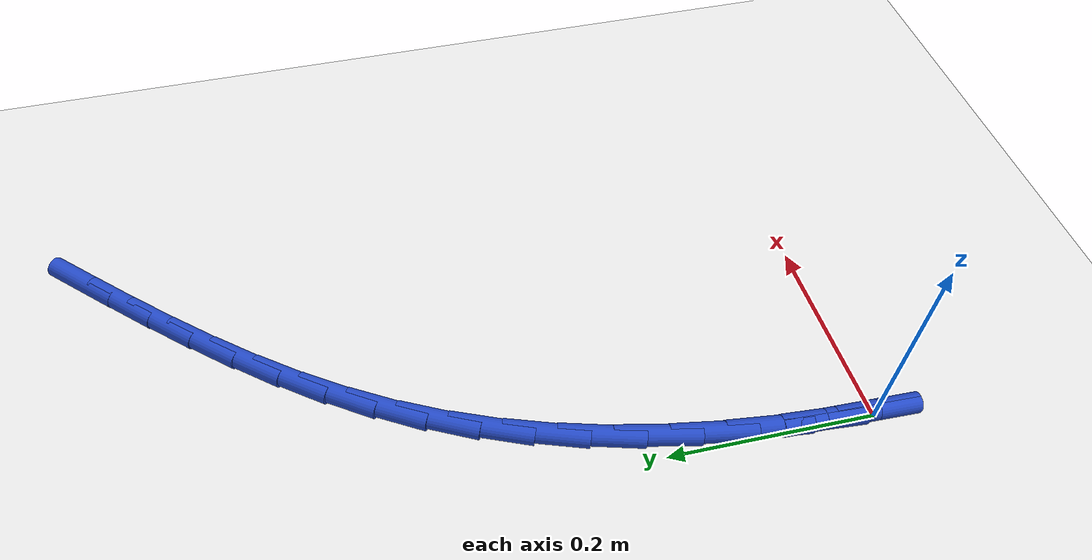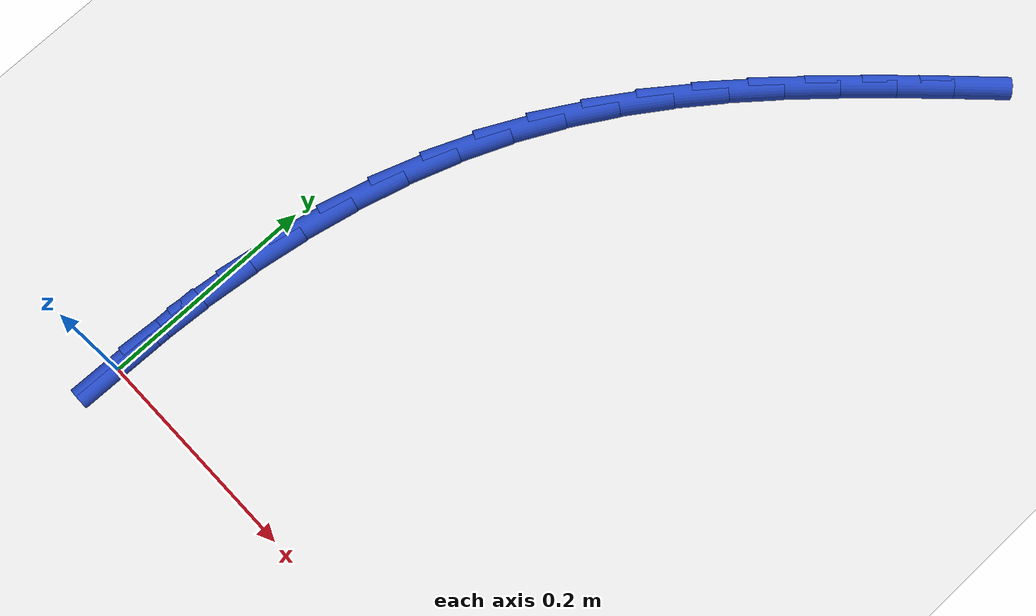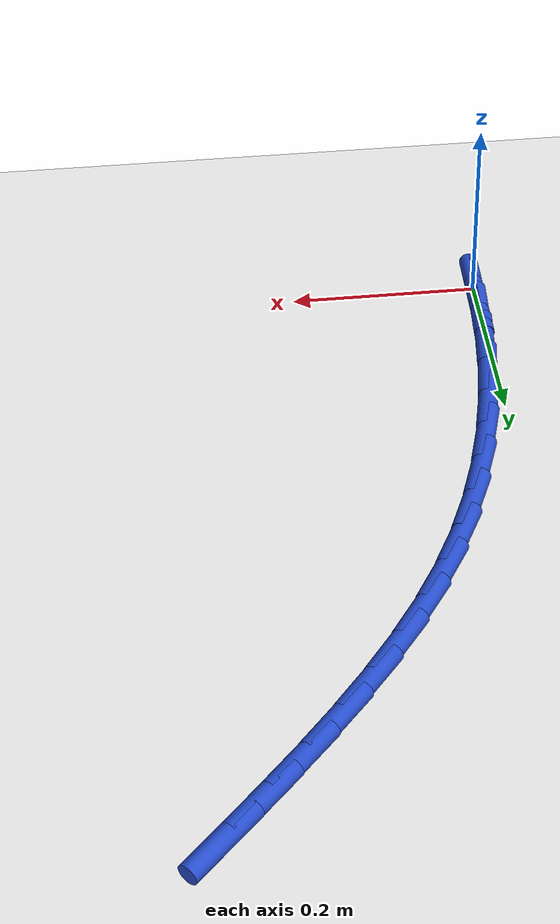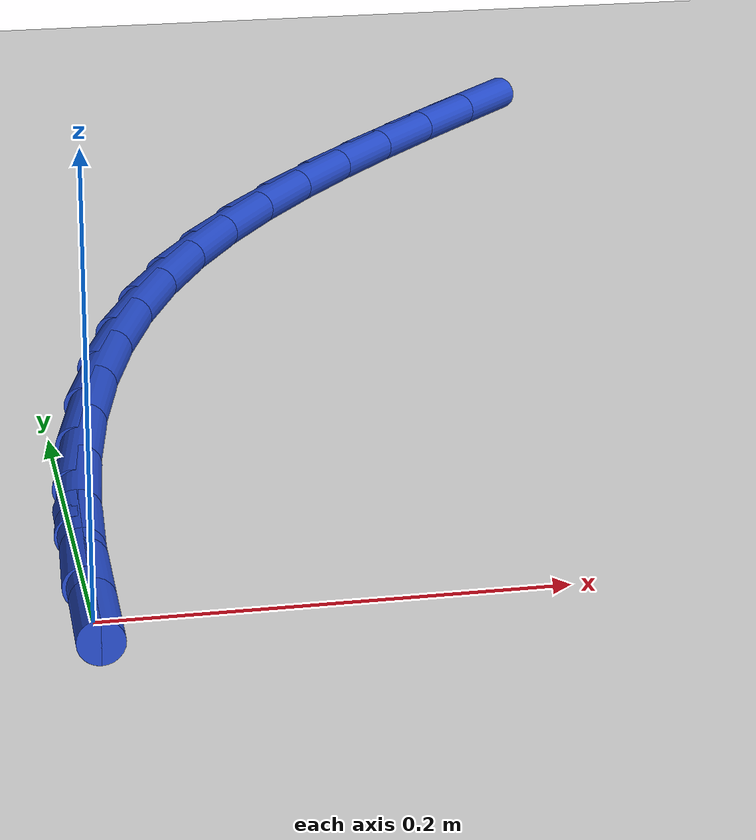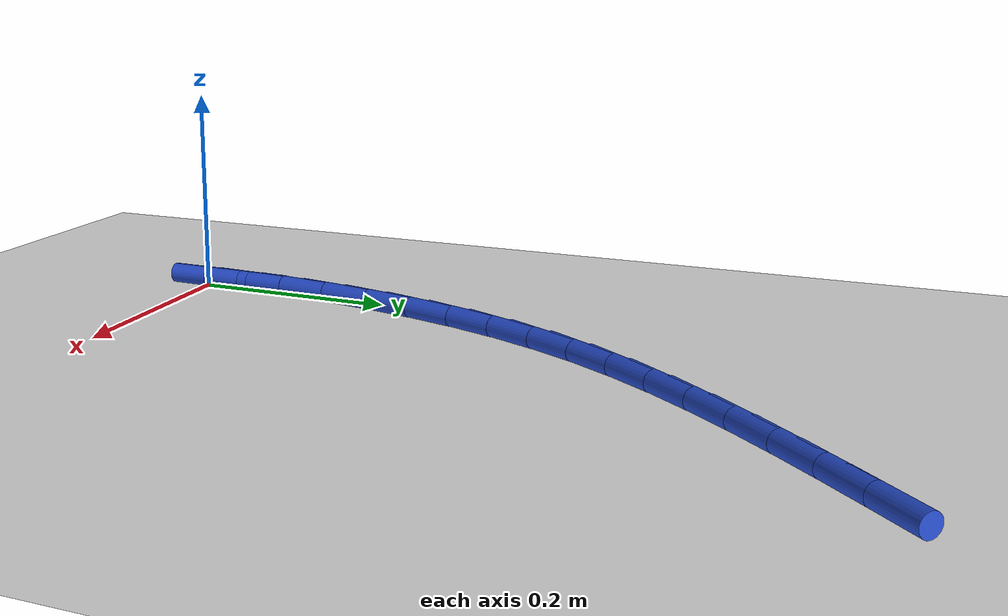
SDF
<sdf version="1.6">
 <world name="default">
  <model name="ground_plane">
   <static>1</static>
   <link name="link">
    <collision name="collision">
     <geometry><plane><normal>0 0 1</normal><size>100 100</size></plane></geometry>
     <surface><friction><ode><mu>100</mu><mu2>50</mu2></ode></friction></surface>
    </collision>
    <visual name="visual">
     <cast_shadows>0</cast_shadows>
     <geometry><plane><normal>0 0 1</normal><size>100 100</size></plane></geometry>
     <material>
      <script><uri>file://media/materials/scripts/gazebo.material</uri><name>Gazebo/WhiteGlow</name></script>
     </material>
    </visual>
   </link>
  </model>
  <model name="line">
   <link name="link_0">
    <pose>-3.8163916471489756e-17 -6.938893903907228e-17 0.01 0 1.57 1.5462756870200094</pose>
    <collision name="collision">
     <geometry><cylinder><radius>0.01</radius><length>0.08</length></cylinder></geometry>
    </collision>
    <visual name="visual">
     <material>
      <script><name>Gazebo/Blue</name><uri>file://media/materials/scripts/gazebo.material</uri></script>
     </material>
     <geometry><cylinder><radius>0.01</radius><length>0.08</length></cylinder></geometry>
    </visual>
   </link>
   <link name="link_1">
    <pose>0.0012672009260338462 0.05166859243172 0.01 0 1.57 1.502393266471117</pose>
    <collision name="collision">
     <geometry><cylinder><radius>0.01</radius><length>0.08</length></cylinder></geometry>
    </collision>
    <visual name="visual">
     <material>
      <script><name>Gazebo/Blue</name><uri>file://media/materials/scripts/gazebo.material</uri></script>
     </material>
     <geometry><cylinder><radius>0.01</radius><length>0.08</length></cylinder></geometry>
    </visual>
   </link>
   <link name="link_2">
    <pose>0.004782046874387346 0.10297276300416074 0.01 0 1.57 1.4556271245263754</pose>
    <collision name="collision">
     <geometry><cylinder><radius>0.01</radius><length>0.08</length></cylinder></geometry>
    </collision>
    <visual name="visual">
     <material>
      <script><name>Gazebo/Blue</name><uri>file://media/materials/scripts/gazebo.material</uri></script>
     </material>
     <geometry><cylinder><radius>0.01</radius><length>0.08</length></cylinder></geometry>
    </visual>
   </link>
   <link name="link_3">
    <pose>0.010650732320014854 0.15370433924145888 0.01 0 1.57 1.4055778288071707</pose>
    <collision name="collision">
     <geometry><cylinder><radius>0.01</radius><length>0.08</length></cylinder></geometry>
    </collision>
    <visual name="visual">
     <material>
      <script><name>Gazebo/Blue</name><uri>file://media/materials/scripts/gazebo.material</uri></script>
     </material>
     <geometry><cylinder><radius>0.01</radius><length>0.08</length></cylinder></geometry>
    </visual>
   </link>
   <link name="link_4">
    <pose>0.018979451737870794 0.2036551486677512 0.01 0 1.57 1.3518445580672431</pose>
    <collision name="collision">
     <geometry><cylinder><radius>0.01</radius><length>0.08</length></cylinder></geometry>
    </collision>
    <visual name="visual">
     <material>
      <script><name>Gazebo/Blue</name><uri>file://media/materials/scripts/gazebo.material</uri></script>
     </material>
     <geometry><cylinder><radius>0.01</radius><length>0.08</length></cylinder></geometry>
    </visual>
   </link>
   <link name="link_5">
    <pose>0.029874399602909555 0.2526170188071743 0.01 0 1.57 1.2940400681866113</pose>
    <collision name="collision">
     <geometry><cylinder><radius>0.01</radius><length>0.08</length></cylinder></geometry>
    </collision>
    <visual name="visual">
     <material>
      <script><name>Gazebo/Blue</name><uri>file://media/materials/scripts/gazebo.material</uri></script>
     </material>
     <geometry><cylinder><radius>0.01</radius><length>0.08</length></cylinder></geometry>
    </visual>
   </link>
   <link name="link_6">
    <pose>0.04344177039008556 0.3003817771838649 0.01 0 1.57 1.2318140821504533</pose>
    <collision name="collision">
     <geometry><cylinder><radius>0.01</radius><length>0.08</length></cylinder></geometry>
    </collision>
    <visual name="visual">
     <material>
      <script><name>Gazebo/Blue</name><uri>file://media/materials/scripts/gazebo.material</uri></script>
     </material>
     <geometry><cylinder><radius>0.01</radius><length>0.08</length></cylinder></geometry>
    </visual>
   </link>
   <link name="link_7">
    <pose>0.0597877585743532 0.34674125132195976 0.01 0 1.57 1.1648866564142413</pose>
    <collision name="collision">
     <geometry><cylinder><radius>0.01</radius><length>0.08</length></cylinder></geometry>
    </collision>
    <visual name="visual">
     <material>
      <script><name>Gazebo/Blue</name><uri>file://media/materials/scripts/gazebo.material</uri></script>
     </material>
     <geometry><cylinder><radius>0.01</radius><length>0.08</length></cylinder></geometry>
    </visual>
   </link>
   <link name="link_8">
    <pose>0.07901855863066692 0.3914872687455957 0.01 0 1.57 1.0936525798579175</pose>
    <collision name="collision">
     <geometry><cylinder><radius>0.01</radius><length>0.08</length></cylinder></geometry>
    </collision>
    <visual name="visual">
     <material>
      <script><name>Gazebo/Blue</name><uri>file://media/materials/scripts/gazebo.material</uri></script>
     </material>
     <geometry><cylinder><radius>0.01</radius><length>0.08</length></cylinder></geometry>
    </visual>
   </link>
   <link name="link_9">
    <pose>0.1012205721681377 0.4344323795262763 0.01 0 1.57 1.025270810023189</pose>
    <collision name="collision">
     <geometry><cylinder><radius>0.01</radius><length>0.08</length></cylinder></geometry>
    </collision>
    <visual name="visual">
     <material>
      <script><name>Gazebo/Blue</name><uri>file://media/materials/scripts/gazebo.material</uri></script>
     </material>
     <geometry><cylinder><radius>0.01</radius><length>0.08</length></cylinder></geometry>
    </visual>
   </link>
   <link name="link_10">
    <pose>0.12623544718034968 0.4756453835596192 0.01 0 1.57 0.9651843494109622</pose>
    <collision name="collision">
     <geometry><cylinder><radius>0.01</radius><length>0.08</length></cylinder></geometry>
    </collision>
    <visual name="visual">
     <material>
      <script><name>Gazebo/Blue</name><uri>file://media/materials/scripts/gazebo.material</uri></script>
     </material>
     <geometry><cylinder><radius>0.01</radius><length>0.08</length></cylinder></geometry>
    </visual>
   </link>
   <link name="link_11">
    <pose>0.15373967337440875 0.5153679966010128 0.01 0 1.57 0.9139728003465949</pose>
    <collision name="collision">
     <geometry><cylinder><radius>0.01</radius><length>0.08</length></cylinder></geometry>
    </collision>
    <visual name="visual">
     <material>
      <script><name>Gazebo/Blue</name><uri>file://media/materials/scripts/gazebo.material</uri></script>
     </material>
     <geometry><cylinder><radius>0.01</radius><length>0.08</length></cylinder></geometry>
    </visual>
   </link>
   <link name="link_12">
    <pose>0.1834066428311617 0.5538451775292715 0.01 0 1.57 0.8717819418755589</pose>
    <collision name="collision">
     <geometry><cylinder><radius>0.01</radius><length>0.08</length></cylinder></geometry>
    </collision>
    <visual name="visual">
     <material>
      <script><name>Gazebo/Blue</name><uri>file://media/materials/scripts/gazebo.material</uri></script>
     </material>
     <geometry><cylinder><radius>0.01</radius><length>0.08</length></cylinder></geometry>
    </visual>
   </link>
   <link name="link_13">
    <pose>0.21490974763145532 0.5913218852232094 0.01 0 1.57 0.8385297779313536</pose>
    <collision name="collision">
     <geometry><cylinder><radius>0.01</radius><length>0.08</length></cylinder></geometry>
    </collision>
    <visual name="visual">
     <material>
      <script><name>Gazebo/Blue</name><uri>file://media/materials/scripts/gazebo.material</uri></script>
     </material>
     <geometry><cylinder><radius>0.01</radius><length>0.08</length></cylinder></geometry>
    </visual>
   </link>
   <link name="link_14">
    <pose>0.2479223798561363 0.6280430785616407 0.01 0 1.57 0.8140112184688358</pose>
    <collision name="collision">
     <geometry><cylinder><radius>0.01</radius><length>0.08</length></cylinder></geometry>
    </collision>
    <visual name="visual">
     <material>
      <script><name>Gazebo/Blue</name><uri>file://media/materials/scripts/gazebo.material</uri></script>
     </material>
     <geometry><cylinder><radius>0.01</radius><length>0.08</length></cylinder></geometry>
    </visual>
   </link>
   <link name="link_15">
    <pose>0.2821179315860514 0.6642537164233795 0.01 0 1.57 0.7979780193318727</pose>
    <collision name="collision">
     <geometry><cylinder><radius>0.01</radius><length>0.08</length></cylinder></geometry>
    </collision>
    <visual name="visual">
     <material>
      <script><name>Gazebo/Blue</name><uri>file://media/materials/scripts/gazebo.material</uri></script>
     </material>
     <geometry><cylinder><radius>0.01</radius><length>0.08</length></cylinder></geometry>
    </visual>
   </link>
   <link name="link_16">
    <pose>0.3171697949020476 0.7001987576872405 0.01 0 1.57 0.7901926432486641</pose>
    <collision name="collision">
     <geometry><cylinder><radius>0.01</radius><length>0.08</length></cylinder></geometry>
    </collision>
    <visual name="visual">
     <material>
      <script><name>Gazebo/Blue</name><uri>file://media/materials/scripts/gazebo.material</uri></script>
     </material>
     <geometry><cylinder><radius>0.01</radius><length>0.08</length></cylinder></geometry>
    </visual>
   </link>
   <link name="link_150">
    <pose>-2.7755575615628914e-17 -2.220446049250313e-16 0.01 0 1.57 1.5470509822639709</pose>
    <collision name="collision">
     <geometry><cylinder><radius>0.01</radius><length>0.08</length></cylinder></geometry>
    </collision>
    <visual name="visual">
     <material>
      <script><name>Gazebo/Blue</name><uri>file://media/materials/scripts/gazebo.material</uri></script>
     </material>
     <geometry><cylinder><radius>0.01</radius><length>0.08</length></cylinder></geometry>
    </visual>
   </link>
   <link name="link_151">
    <pose>0.0012266747624178308 0.051649880344084645 0.01 0 1.57 1.5470509822639706</pose>
    <collision name="collision">
     <geometry><cylinder><radius>0.01</radius><length>0.08</length></cylinder></geometry>
    </collision>
    <visual name="visual">
     <material>
      <script><name>Gazebo/Blue</name><uri>file://media/materials/scripts/gazebo.material</uri></script>
     </material>
     <geometry><cylinder><radius>0.01</radius><length>0.08</length></cylinder></geometry>
    </visual>
   </link>
  </model>
 </world>
</sdf>
